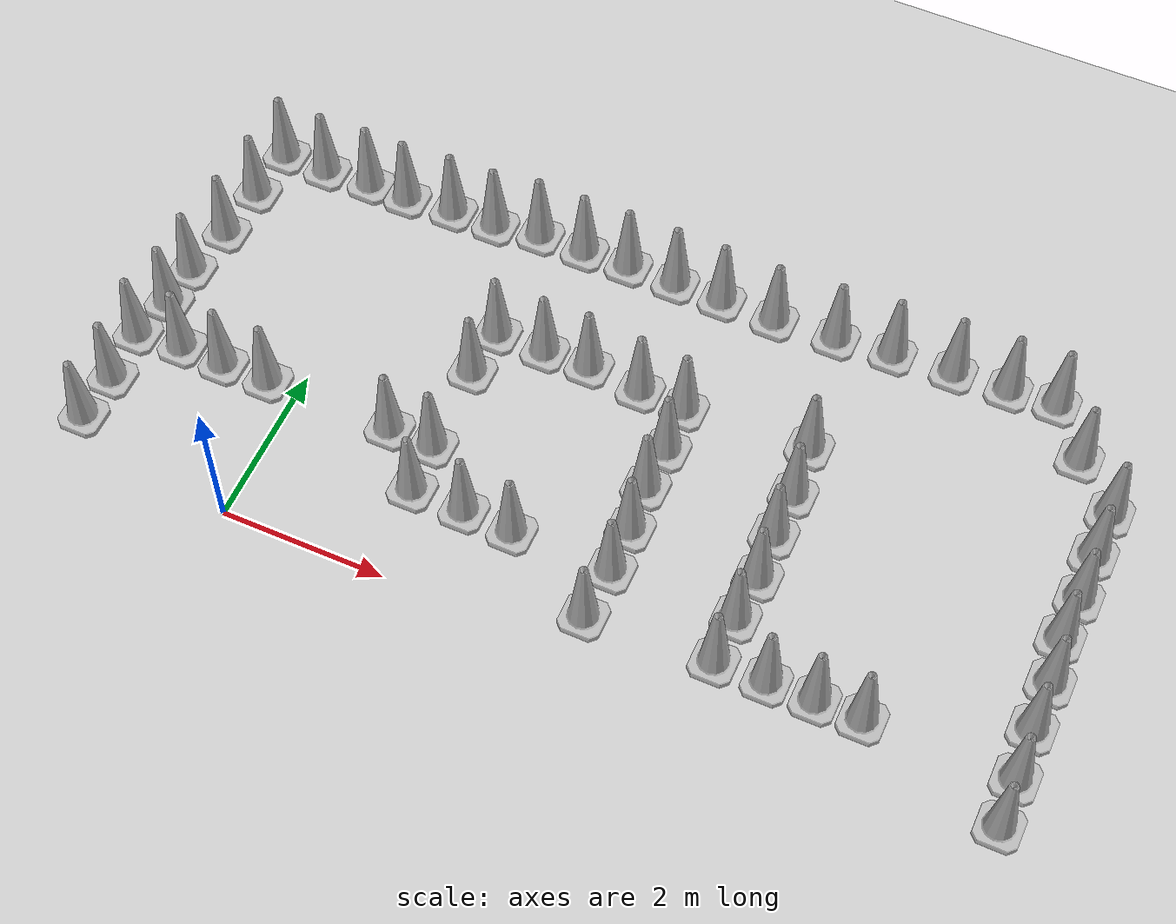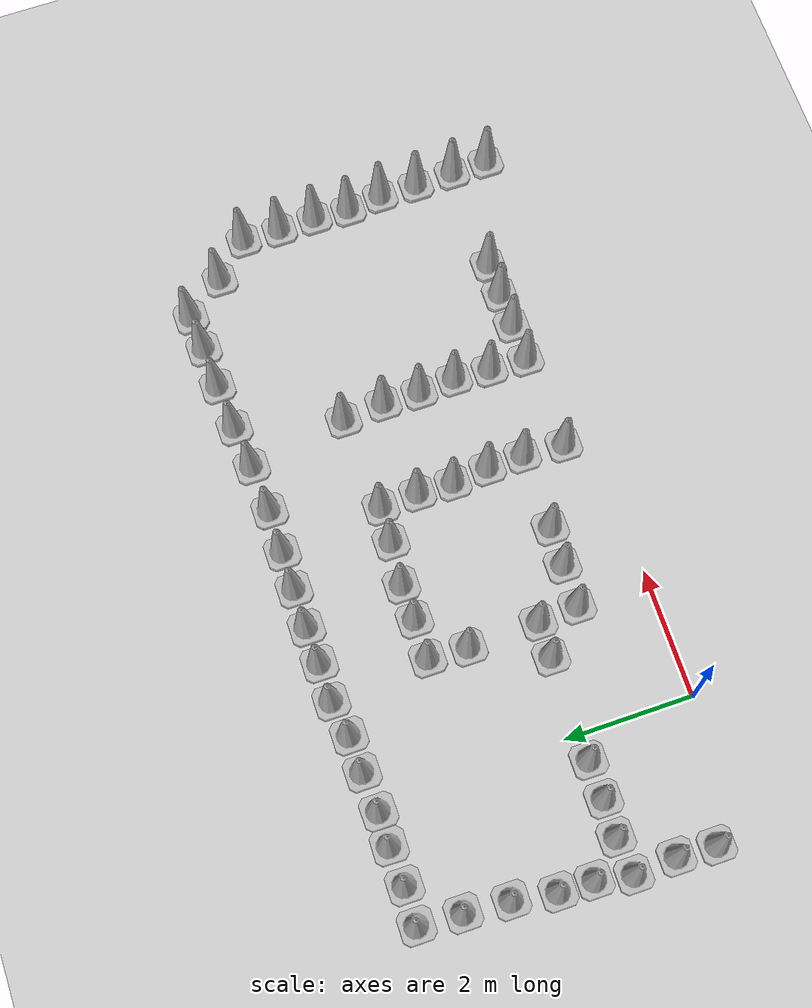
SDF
<sdf version="1.7">
 <world name="default">
  <model name="ground_plane">
   <static>1</static>
   <link name="link">
    <collision name="collision">
     <geometry><plane><normal>0 0 1</normal><size>100 100</size></plane></geometry>
     <surface>
      <contact><collide_bitmask>65535</collide_bitmask></contact>
      <friction><ode><mu>100</mu><mu2>50</mu2></ode></friction>
     </surface>
    </collision>
    <visual name="visual">
     <cast_shadows>0</cast_shadows>
     <geometry><plane><normal>0 0 1</normal><size>100 100</size></plane></geometry>
     <material>
      <script><uri>file://media/materials/scripts/gazebo.material</uri><name>Gazebo/Grey</name></script>
     </material>
    </visual>
   </link>
  </model>
  <model name="Construction Cone_8">
   <link name="link">
    <collision name="collision">
     <geometry>
      <mesh><scale>10 10 10</scale><uri>model://construction_cone/meshes/construction_cone.dae</uri></mesh>
     </geometry>
    </collision>
    <visual name="visual">
     <geometry>
      <mesh><scale>10 10 10</scale><uri>model://construction_cone/meshes/construction_cone.dae</uri></mesh>
     </geometry>
    </visual>
    <inertial>
     <inertia><ixx>1</ixx><ixy>0</ixy><ixz>0</ixz><iyy>1</iyy><iyz>0</iyz><izz>1</izz></inertia>
     <mass>1</mass>
    </inertial>
   </link>
   <pose>-2.10442 0.47385 -0 0 -0 0</pose>
  </model>
  <model name="Construction Cone_9">
   <link name="link">
    <collision name="collision">
     <geometry>
      <mesh><scale>10 10 10</scale><uri>model://construction_cone/meshes/construction_cone.dae</uri></mesh>
     </geometry>
    </collision>
    <visual name="visual">
     <geometry>
      <mesh><scale>10 10 10</scale><uri>model://construction_cone/meshes/construction_cone.dae</uri></mesh>
     </geometry>
    </visual>
    <inertial>
     <inertia><ixx>1</ixx><ixy>0</ixy><ixz>0</ixz><iyy>1</iyy><iyz>0</iyz><izz>1</izz></inertia>
     <mass>1</mass>
    </inertial>
   </link>
   <pose>-2.07021 1.07184 -0 0 -0 0</pose>
  </model>
  <model name="Construction Cone_12">
   <link name="link">
    <collision name="collision">
     <geometry>
      <mesh><scale>10 10 10</scale><uri>model://construction_cone/meshes/construction_cone.dae</uri></mesh>
     </geometry>
    </collision>
    <visual name="visual">
     <geometry>
      <mesh><scale>10 10 10</scale><uri>model://construction_cone/meshes/construction_cone.dae</uri></mesh>
     </geometry>
    </visual>
    <inertial>
     <inertia><ixx>1</ixx><ixy>0</ixy><ixz>0</ixz><iyy>1</iyy><iyz>0</iyz><izz>1</izz></inertia>
     <mass>1</mass>
    </inertial>
   </link>
   <pose>-2.11151 1.73001 0 -0 -0 -0</pose>
  </model>
  <model name="Construction Cone_13">
   <link name="link">
    <collision name="collision">
     <geometry>
      <mesh><scale>10 10 10</scale><uri>model://construction_cone/meshes/construction_cone.dae</uri></mesh>
     </geometry>
    </collision>
    <visual name="visual">
     <geometry>
      <mesh><scale>10 10 10</scale><uri>model://construction_cone/meshes/construction_cone.dae</uri></mesh>
     </geometry>
    </visual>
    <inertial>
     <inertia><ixx>1</ixx><ixy>0</ixy><ixz>0</ixz><iyy>1</iyy><iyz>0</iyz><izz>1</izz></inertia>
     <mass>1</mass>
    </inertial>
   </link>
   <pose>-1.53957 1.78306 -0 0 -0 0</pose>
  </model>
  <model name="Construction Cone_14">
   <link name="link">
    <collision name="collision">
     <geometry>
      <mesh><scale>10 10 10</scale><uri>model://construction_cone/meshes/construction_cone.dae</uri></mesh>
     </geometry>
    </collision>
    <visual name="visual">
     <geometry>
      <mesh><scale>10 10 10</scale><uri>model://construction_cone/meshes/construction_cone.dae</uri></mesh>
     </geometry>
    </visual>
    <inertial>
     <inertia><ixx>1</ixx><ixy>0</ixy><ixz>0</ixz><iyy>1</iyy><iyz>0</iyz><izz>1</izz></inertia>
     <mass>1</mass>
    </inertial>
   </link>
   <pose>-0.975728 1.76072 -0 0 -0 0</pose>
  </model>
  <model name="Construction Cone_15">
   <link name="link">
    <collision name="collision">
     <geometry>
      <mesh><scale>10 10 10</scale><uri>model://construction_cone/meshes/construction_cone.dae</uri></mesh>
     </geometry>
    </collision>
    <visual name="visual">
     <geometry>
      <mesh><scale>10 10 10</scale><uri>model://construction_cone/meshes/construction_cone.dae</uri></mesh>
     </geometry>
    </visual>
    <inertial>
     <inertia><ixx>1</ixx><ixy>0</ixy><ixz>0</ixz><iyy>1</iyy><iyz>0</iyz><izz>1</izz></inertia>
     <mass>1</mass>
    </inertial>
   </link>
   <pose>-0.387008 1.76867 -0 0 -0 0</pose>
  </model>
  <model name="Construction Cone_16">
   <link name="link">
    <collision name="collision">
     <geometry>
      <mesh><scale>10 10 10</scale><uri>model://construction_cone/meshes/construction_cone.dae</uri></mesh>
     </geometry>
    </collision>
    <visual name="visual">
     <geometry>
      <mesh><scale>10 10 10</scale><uri>model://construction_cone/meshes/construction_cone.dae</uri></mesh>
     </geometry>
    </visual>
    <inertial>
     <inertia><ixx>1</ixx><ixy>0</ixy><ixz>0</ixz><iyy>1</iyy><iyz>0</iyz><izz>1</izz></inertia>
     <mass>1</mass>
    </inertial>
   </link>
   <pose>1.81349 1.12938 -0 0 -0 0</pose>
  </model>
  <model name="Construction Cone_17">
   <link name="link">
    <collision name="collision">
     <geometry>
      <mesh><scale>10 10 10</scale><uri>model://construction_cone/meshes/construction_cone.dae</uri></mesh>
     </geometry>
    </collision>
    <visual name="visual">
     <geometry>
      <mesh><scale>10 10 10</scale><uri>model://construction_cone/meshes/construction_cone.dae</uri></mesh>
     </geometry>
    </visual>
    <inertial>
     <inertia><ixx>1</ixx><ixy>0</ixy><ixz>0</ixz><iyy>1</iyy><iyz>0</iyz><izz>1</izz></inertia>
     <mass>1</mass>
    </inertial>
   </link>
   <pose>1.76686 1.75482 -0 0 -0 0</pose>
  </model>
  <model name="Construction Cone_18">
   <link name="link">
    <collision name="collision">
     <geometry>
      <mesh><scale>10 10 10</scale><uri>model://construction_cone/meshes/construction_cone.dae</uri></mesh>
     </geometry>
    </collision>
    <visual name="visual">
     <geometry>
      <mesh><scale>10 10 10</scale><uri>model://construction_cone/meshes/construction_cone.dae</uri></mesh>
     </geometry>
    </visual>
    <inertial>
     <inertia><ixx>1</ixx><ixy>0</ixy><ixz>0</ixz><iyy>1</iyy><iyz>0</iyz><izz>1</izz></inertia>
     <mass>1</mass>
    </inertial>
   </link>
   <pose>1.20932 1.76099 -0 0 -0 0</pose>
  </model>
  <model name="Construction Cone_19">
   <link name="link">
    <collision name="collision">
     <geometry>
      <mesh><scale>10 10 10</scale><uri>model://construction_cone/meshes/construction_cone.dae</uri></mesh>
     </geometry>
    </collision>
    <visual name="visual">
     <geometry>
      <mesh><scale>10 10 10</scale><uri>model://construction_cone/meshes/construction_cone.dae</uri></mesh>
     </geometry>
    </visual>
    <inertial>
     <inertia><ixx>1</ixx><ixy>0</ixy><ixz>0</ixz><iyy>1</iyy><iyz>0</iyz><izz>1</izz></inertia>
     <mass>1</mass>
    </inertial>
   </link>
   <pose>2.47039 1.11818 -0 -0 -0 -0</pose>
  </model>
  <model name="Construction Cone_20">
   <link name="link">
    <collision name="collision">
     <geometry>
      <mesh><scale>10 10 10</scale><uri>model://construction_cone/meshes/construction_cone.dae</uri></mesh>
     </geometry>
    </collision>
    <visual name="visual">
     <geometry>
      <mesh><scale>10 10 10</scale><uri>model://construction_cone/meshes/construction_cone.dae</uri></mesh>
     </geometry>
    </visual>
    <inertial>
     <inertia><ixx>1</ixx><ixy>0</ixy><ixz>0</ixz><iyy>1</iyy><iyz>0</iyz><izz>1</izz></inertia>
     <mass>1</mass>
    </inertial>
   </link>
   <pose>3.08287 1.09 -0 0 -0 0</pose>
  </model>
  <model name="Construction Cone_21">
   <link name="link">
    <collision name="collision">
     <geometry>
      <mesh><scale>10 10 10</scale><uri>model://construction_cone/meshes/construction_cone.dae</uri></mesh>
     </geometry>
    </collision>
    <visual name="visual">
     <geometry>
      <mesh><scale>10 10 10</scale><uri>model://construction_cone/meshes/construction_cone.dae</uri></mesh>
     </geometry>
    </visual>
    <inertial>
     <inertia><ixx>1</ixx><ixy>0</ixy><ixz>0</ixz><iyy>1</iyy><iyz>0</iyz><izz>1</izz></inertia>
     <mass>1</mass>
    </inertial>
   </link>
   <pose>4.29676 1.09476 -0 0 -0 0</pose>
  </model>
  <model name="Construction Cone_22">
   <link name="link">
    <collision name="collision">
     <geometry>
      <mesh><scale>10 10 10</scale><uri>model://construction_cone/meshes/construction_cone.dae</uri></mesh>
     </geometry>
    </collision>
    <visual name="visual">
     <geometry>
      <mesh><scale>10 10 10</scale><uri>model://construction_cone/meshes/construction_cone.dae</uri></mesh>
     </geometry>
    </visual>
    <inertial>
     <inertia><ixx>1</ixx><ixy>0</ixy><ixz>0</ixz><iyy>1</iyy><iyz>0</iyz><izz>1</izz></inertia>
     <mass>1</mass>
    </inertial>
   </link>
   <pose>4.27915 1.66864 -0 0 -0 0</pose>
  </model>
  <model name="Construction Cone_23">
   <link name="link">
    <collision name="collision">
     <geometry>
      <mesh><scale>10 10 10</scale><uri>model://construction_cone/meshes/construction_cone.dae</uri></mesh>
     </geometry>
    </collision>
    <visual name="visual">
     <geometry>
      <mesh><scale>10 10 10</scale><uri>model://construction_cone/meshes/construction_cone.dae</uri></mesh>
     </geometry>
    </visual>
    <inertial>
     <inertia><ixx>1</ixx><ixy>0</ixy><ixz>0</ixz><iyy>1</iyy><iyz>0</iyz><izz>1</izz></inertia>
     <mass>1</mass>
    </inertial>
   </link>
   <pose>4.22013 2.24031 -0 0 -0 0</pose>
  </model>
  <model name="Construction Cone_24">
   <link name="link">
    <collision name="collision">
     <geometry>
      <mesh><scale>10 10 10</scale><uri>model://construction_cone/meshes/construction_cone.dae</uri></mesh>
     </geometry>
    </collision>
    <visual name="visual">
     <geometry>
      <mesh><scale>10 10 10</scale><uri>model://construction_cone/meshes/construction_cone.dae</uri></mesh>
     </geometry>
    </visual>
    <inertial>
     <inertia><ixx>1</ixx><ixy>0</ixy><ixz>0</ixz><iyy>1</iyy><iyz>0</iyz><izz>1</izz></inertia>
     <mass>1</mass>
    </inertial>
   </link>
   <pose>4.23444 2.79979 0 -0 -0 -0</pose>
  </model>
  <model name="Construction Cone_25">
   <link name="link">
    <collision name="collision">
     <geometry>
      <mesh><scale>10 10 10</scale><uri>model://construction_cone/meshes/construction_cone.dae</uri></mesh>
     </geometry>
    </collision>
    <visual name="visual">
     <geometry>
      <mesh><scale>10 10 10</scale><uri>model://construction_cone/meshes/construction_cone.dae</uri></mesh>
     </geometry>
    </visual>
    <inertial>
     <inertia><ixx>1</ixx><ixy>0</ixy><ixz>0</ixz><iyy>1</iyy><iyz>0</iyz><izz>1</izz></inertia>
     <mass>1</mass>
    </inertial>
   </link>
   <pose>4.2051 3.39511 -0 0 -0 0</pose>
  </model>
  <model name="Construction Cone_26">
   <link name="link">
    <collision name="collision">
     <geometry>
      <mesh><scale>10 10 10</scale><uri>model://construction_cone/meshes/construction_cone.dae</uri></mesh>
     </geometry>
    </collision>
    <visual name="visual">
     <geometry>
      <mesh><scale>10 10 10</scale><uri>model://construction_cone/meshes/construction_cone.dae</uri></mesh>
     </geometry>
    </visual>
    <inertial>
     <inertia><ixx>1</ixx><ixy>0</ixy><ixz>0</ixz><iyy>1</iyy><iyz>0</iyz><izz>1</izz></inertia>
     <mass>1</mass>
    </inertial>
   </link>
   <pose>3.63468 3.42342 -0 0 -0 0</pose>
  </model>
  <model name="Construction Cone_27">
   <link name="link">
    <collision name="collision">
     <geometry>
      <mesh><scale>10 10 10</scale><uri>model://construction_cone/meshes/construction_cone.dae</uri></mesh>
     </geometry>
    </collision>
    <visual name="visual">
     <geometry>
      <mesh><scale>10 10 10</scale><uri>model://construction_cone/meshes/construction_cone.dae</uri></mesh>
     </geometry>
    </visual>
    <inertial>
     <inertia><ixx>1</ixx><ixy>0</ixy><ixz>0</ixz><iyy>1</iyy><iyz>0</iyz><izz>1</izz></inertia>
     <mass>1</mass>
    </inertial>
   </link>
   <pose>2.95527 3.48574 -0 0 -0 0</pose>
  </model>
  <model name="Construction Cone_28">
   <link name="link">
    <collision name="collision">
     <geometry>
      <mesh><scale>10 10 10</scale><uri>model://construction_cone/meshes/construction_cone.dae</uri></mesh>
     </geometry>
    </collision>
    <visual name="visual">
     <geometry>
      <mesh><scale>10 10 10</scale><uri>model://construction_cone/meshes/construction_cone.dae</uri></mesh>
     </geometry>
    </visual>
    <inertial>
     <inertia><ixx>1</ixx><ixy>0</ixy><ixz>0</ixz><iyy>1</iyy><iyz>0</iyz><izz>1</izz></inertia>
     <mass>1</mass>
    </inertial>
   </link>
   <pose>2.39059 3.47145 -0 0 -0 0</pose>
  </model>
  <model name="Construction Cone_29">
   <link name="link">
    <collision name="collision">
     <geometry>
      <mesh><scale>10 10 10</scale><uri>model://construction_cone/meshes/construction_cone.dae</uri></mesh>
     </geometry>
    </collision>
    <visual name="visual">
     <geometry>
      <mesh><scale>10 10 10</scale><uri>model://construction_cone/meshes/construction_cone.dae</uri></mesh>
     </geometry>
    </visual>
    <inertial>
     <inertia><ixx>1</ixx><ixy>0</ixy><ixz>0</ixz><iyy>1</iyy><iyz>0</iyz><izz>1</izz></inertia>
     <mass>1</mass>
    </inertial>
   </link>
   <pose>1.77181 3.47564 -0 0 -0 0</pose>
  </model>
  <model name="Construction Cone_30">
   <link name="link">
    <collision name="collision">
     <geometry>
      <mesh><scale>10 10 10</scale><uri>model://construction_cone/meshes/construction_cone.dae</uri></mesh>
     </geometry>
    </collision>
    <visual name="visual">
     <geometry>
      <mesh><scale>10 10 10</scale><uri>model://construction_cone/meshes/construction_cone.dae</uri></mesh>
     </geometry>
    </visual>
    <inertial>
     <inertia><ixx>1</ixx><ixy>0</ixy><ixz>0</ixz><iyy>1</iyy><iyz>0</iyz><izz>1</izz></inertia>
     <mass>1</mass>
    </inertial>
   </link>
   <pose>1.73716 2.85691 -0 0 -0 0</pose>
  </model>
  <model name="Construction Cone_31">
   <link name="link">
    <collision name="collision">
     <geometry>
      <mesh><scale>10 10 10</scale><uri>model://construction_cone/meshes/construction_cone.dae</uri></mesh>
     </geometry>
    </collision>
    <visual name="visual">
     <geometry>
      <mesh><scale>10 10 10</scale><uri>model://construction_cone/meshes/construction_cone.dae</uri></mesh>
     </geometry>
    </visual>
    <inertial>
     <inertia><ixx>1</ixx><ixy>0</ixy><ixz>0</ixz><iyy>1</iyy><iyz>0</iyz><izz>1</izz></inertia>
     <mass>1</mass>
    </inertial>
   </link>
   <pose>4.25954 0.441284 -0 0 -0 0</pose>
  </model>
  <model name="Construction Cone_48">
   <link name="link">
    <collision name="collision">
     <geometry>
      <mesh><scale>10 10 10</scale><uri>model://construction_cone/meshes/construction_cone.dae</uri></mesh>
     </geometry>
    </collision>
    <visual name="visual">
     <geometry>
      <mesh><scale>10 10 10</scale><uri>model://construction_cone/meshes/construction_cone.dae</uri></mesh>
     </geometry>
    </visual>
    <inertial>
     <inertia><ixx>1</ixx><ixy>0</ixy><ixz>0</ixz><iyy>1</iyy><iyz>0</iyz><izz>1</izz></inertia>
     <mass>1</mass>
    </inertial>
   </link>
   <pose>5.77529 0.514484 -0 0 -1e-06 0</pose>
  </model>
  <model name="Construction Cone_52">
   <link name="link">
    <collision name="collision">
     <geometry>
      <mesh><scale>10 10 10</scale><uri>model://construction_cone/meshes/construction_cone.dae</uri></mesh>
     </geometry>
    </collision>
    <visual name="visual">
     <geometry>
      <mesh><scale>10 10 10</scale><uri>model://construction_cone/meshes/construction_cone.dae</uri></mesh>
     </geometry>
    </visual>
    <inertial>
     <inertia><ixx>1</ixx><ixy>0</ixy><ixz>0</ixz><iyy>1</iyy><iyz>0</iyz><izz>1</izz></inertia>
     <mass>1</mass>
    </inertial>
   </link>
   <pose>5.78905 1.10142 -0 0 -1e-06 0</pose>
  </model>
  <model name="Construction Cone_53">
   <link name="link">
    <collision name="collision">
     <geometry>
      <mesh><scale>10 10 10</scale><uri>model://construction_cone/meshes/construction_cone.dae</uri></mesh>
     </geometry>
    </collision>
    <visual name="visual">
     <geometry>
      <mesh><scale>10 10 10</scale><uri>model://construction_cone/meshes/construction_cone.dae</uri></mesh>
     </geometry>
    </visual>
    <inertial>
     <inertia><ixx>1</ixx><ixy>0</ixy><ixz>0</ixz><iyy>1</iyy><iyz>0</iyz><izz>1</izz></inertia>
     <mass>1</mass>
    </inertial>
   </link>
   <pose>6.38293 0.527132 -0 0 -0 0</pose>
  </model>
  <model name="Construction Cone_58">
   <link name="link">
    <collision name="collision">
     <geometry>
      <mesh><scale>10 10 10</scale><uri>model://construction_cone/meshes/construction_cone.dae</uri></mesh>
     </geometry>
    </collision>
    <visual name="visual">
     <geometry>
      <mesh><scale>10 10 10</scale><uri>model://construction_cone/meshes/construction_cone.dae</uri></mesh>
     </geometry>
    </visual>
    <inertial>
     <inertia><ixx>1</ixx><ixy>0</ixy><ixz>0</ixz><iyy>1</iyy><iyz>0</iyz><izz>1</izz></inertia>
     <mass>1</mass>
    </inertial>
   </link>
   <pose>6.9423 0.529005 -0 0 -1e-06 0</pose>
  </model>
  <model name="Construction Cone_59">
   <link name="link">
    <collision name="collision">
     <geometry>
      <mesh><scale>10 10 10</scale><uri>model://construction_cone/meshes/construction_cone.dae</uri></mesh>
     </geometry>
    </collision>
    <visual name="visual">
     <geometry>
      <mesh><scale>10 10 10</scale><uri>model://construction_cone/meshes/construction_cone.dae</uri></mesh>
     </geometry>
    </visual>
    <inertial>
     <inertia><ixx>1</ixx><ixy>0</ixy><ixz>0</ixz><iyy>1</iyy><iyz>0</iyz><izz>1</izz></inertia>
     <mass>1</mass>
    </inertial>
   </link>
   <pose>7.48709 0.52778 -0 0 -1e-06 0</pose>
  </model>
  <model name="Construction Cone_60">
   <link name="link">
    <collision name="collision">
     <geometry>
      <mesh><scale>10 10 10</scale><uri>model://construction_cone/meshes/construction_cone.dae</uri></mesh>
     </geometry>
    </collision>
    <visual name="visual">
     <geometry>
      <mesh><scale>10 10 10</scale><uri>model://construction_cone/meshes/construction_cone.dae</uri></mesh>
     </geometry>
    </visual>
    <inertial>
     <inertia><ixx>1</ixx><ixy>0</ixy><ixz>0</ixz><iyy>1</iyy><iyz>0</iyz><izz>1</izz></inertia>
     <mass>1</mass>
    </inertial>
   </link>
   <pose>5.81809 1.67331 -0 0 -1e-06 0</pose>
  </model>
  <model name="Construction Cone_61">
   <link name="link">
    <collision name="collision">
     <geometry>
      <mesh><scale>10 10 10</scale><uri>model://construction_cone/meshes/construction_cone.dae</uri></mesh>
     </geometry>
    </collision>
    <visual name="visual">
     <geometry>
      <mesh><scale>10 10 10</scale><uri>model://construction_cone/meshes/construction_cone.dae</uri></mesh>
     </geometry>
    </visual>
    <inertial>
     <inertia><ixx>1</ixx><ixy>0</ixy><ixz>0</ixz><iyy>1</iyy><iyz>0</iyz><izz>1</izz></inertia>
     <mass>1</mass>
    </inertial>
   </link>
   <pose>5.78102 2.25076 -0 0 -0 0</pose>
  </model>
  <model name="Construction Cone_62">
   <link name="link">
    <collision name="collision">
     <geometry>
      <mesh><scale>10 10 10</scale><uri>model://construction_cone/meshes/construction_cone.dae</uri></mesh>
     </geometry>
    </collision>
    <visual name="visual">
     <geometry>
      <mesh><scale>10 10 10</scale><uri>model://construction_cone/meshes/construction_cone.dae</uri></mesh>
     </geometry>
    </visual>
    <inertial>
     <inertia><ixx>1</ixx><ixy>0</ixy><ixz>0</ixz><iyy>1</iyy><iyz>0</iyz><izz>1</izz></inertia>
     <mass>1</mass>
    </inertial>
   </link>
   <pose>5.78332 2.83354 -0 0 -0 0</pose>
  </model>
  <model name="Construction Cone_63">
   <link name="link">
    <collision name="collision">
     <geometry>
      <mesh><scale>10 10 10</scale><uri>model://construction_cone/meshes/construction_cone.dae</uri></mesh>
     </geometry>
    </collision>
    <visual name="visual">
     <geometry>
      <mesh><scale>10 10 10</scale><uri>model://construction_cone/meshes/construction_cone.dae</uri></mesh>
     </geometry>
    </visual>
    <inertial>
     <inertia><ixx>1</ixx><ixy>0</ixy><ixz>0</ixz><iyy>1</iyy><iyz>0</iyz><izz>1</izz></inertia>
     <mass>1</mass>
    </inertial>
   </link>
   <pose>5.72161 3.4937 -0 0 -1e-06 0</pose>
  </model>
  <model name="Construction Cone_76">
   <link name="link">
    <collision name="collision">
     <geometry>
      <mesh><scale>10 10 10</scale><uri>model://construction_cone/meshes/construction_cone.dae</uri></mesh>
     </geometry>
    </collision>
    <visual name="visual">
     <geometry>
      <mesh><scale>10 10 10</scale><uri>model://construction_cone/meshes/construction_cone.dae</uri></mesh>
     </geometry>
    </visual>
    <inertial>
     <inertia><ixx>1</ixx><ixy>0</ixy><ixz>0</ixz><iyy>1</iyy><iyz>0</iyz><izz>1</izz></inertia>
     <mass>1</mass>
    </inertial>
   </link>
   <pose>9.22043 -0.040389 -0 0 -0 0</pose>
  </model>
  <model name="Construction Cone_77">
   <link name="link">
    <collision name="collision">
     <geometry>
      <mesh><scale>10 10 10</scale><uri>model://construction_cone/meshes/construction_cone.dae</uri></mesh>
     </geometry>
    </collision>
    <visual name="visual">
     <geometry>
      <mesh><scale>10 10 10</scale><uri>model://construction_cone/meshes/construction_cone.dae</uri></mesh>
     </geometry>
    </visual>
    <inertial>
     <inertia><ixx>1</ixx><ixy>0</ixy><ixz>0</ixz><iyy>1</iyy><iyz>0</iyz><izz>1</izz></inertia>
     <mass>1</mass>
    </inertial>
   </link>
   <pose>9.20167 0.540591 -0 0 -0 0</pose>
  </model>
  <model name="Construction Cone_78">
   <link name="link">
    <collision name="collision">
     <geometry>
      <mesh><scale>10 10 10</scale><uri>model://construction_cone/meshes/construction_cone.dae</uri></mesh>
     </geometry>
    </collision>
    <visual name="visual">
     <geometry>
      <mesh><scale>10 10 10</scale><uri>model://construction_cone/meshes/construction_cone.dae</uri></mesh>
     </geometry>
    </visual>
    <inertial>
     <inertia><ixx>1</ixx><ixy>0</ixy><ixz>0</ixz><iyy>1</iyy><iyz>0</iyz><izz>1</izz></inertia>
     <mass>1</mass>
    </inertial>
   </link>
   <pose>9.17944 1.16024 -0 0 -1e-06 0</pose>
  </model>
  <model name="Construction Cone_79">
   <link name="link">
    <collision name="collision">
     <geometry>
      <mesh><scale>10 10 10</scale><uri>model://construction_cone/meshes/construction_cone.dae</uri></mesh>
     </geometry>
    </collision>
    <visual name="visual">
     <geometry>
      <mesh><scale>10 10 10</scale><uri>model://construction_cone/meshes/construction_cone.dae</uri></mesh>
     </geometry>
    </visual>
    <inertial>
     <inertia><ixx>1</ixx><ixy>0</ixy><ixz>0</ixz><iyy>1</iyy><iyz>0</iyz><izz>1</izz></inertia>
     <mass>1</mass>
    </inertial>
   </link>
   <pose>9.18199 1.76212 -0 0 -1e-06 0</pose>
  </model>
  <model name="Construction Cone_80">
   <link name="link">
    <collision name="collision">
     <geometry>
      <mesh><scale>10 10 10</scale><uri>model://construction_cone/meshes/construction_cone.dae</uri></mesh>
     </geometry>
    </collision>
    <visual name="visual">
     <geometry>
      <mesh><scale>10 10 10</scale><uri>model://construction_cone/meshes/construction_cone.dae</uri></mesh>
     </geometry>
    </visual>
    <inertial>
     <inertia><ixx>1</ixx><ixy>0</ixy><ixz>0</ixz><iyy>1</iyy><iyz>0</iyz><izz>1</izz></inertia>
     <mass>1</mass>
    </inertial>
   </link>
   <pose>9.1166 2.31998 -0 0 -0 0</pose>
  </model>
  <model name="Construction Cone_81">
   <link name="link">
    <collision name="collision">
     <geometry>
      <mesh><scale>10 10 10</scale><uri>model://construction_cone/meshes/construction_cone.dae</uri></mesh>
     </geometry>
    </collision>
    <visual name="visual">
     <geometry>
      <mesh><scale>10 10 10</scale><uri>model://construction_cone/meshes/construction_cone.dae</uri></mesh>
     </geometry>
    </visual>
    <inertial>
     <inertia><ixx>1</ixx><ixy>0</ixy><ixz>0</ixz><iyy>1</iyy><iyz>0</iyz><izz>1</izz></inertia>
     <mass>1</mass>
    </inertial>
   </link>
   <pose>9.14789 2.87869 -0 0 -1e-06 0</pose>
  </model>
  <model name="Construction Cone_82">
   <link name="link">
    <collision name="collision">
     <geometry>
      <mesh><scale>10 10 10</scale><uri>model://construction_cone/meshes/construction_cone.dae</uri></mesh>
     </geometry>
    </collision>
    <visual name="visual">
     <geometry>
      <mesh><scale>10 10 10</scale><uri>model://construction_cone/meshes/construction_cone.dae</uri></mesh>
     </geometry>
    </visual>
    <inertial>
     <inertia><ixx>1</ixx><ixy>0</ixy><ixz>0</ixz><iyy>1</iyy><iyz>0</iyz><izz>1</izz></inertia>
     <mass>1</mass>
    </inertial>
   </link>
   <pose>9.12885 3.46501 -0 0 -1e-06 0</pose>
  </model>
  <model name="Construction Cone_83">
   <link name="link">
    <collision name="collision">
     <geometry>
      <mesh><scale>10 10 10</scale><uri>model://construction_cone/meshes/construction_cone.dae</uri></mesh>
     </geometry>
    </collision>
    <visual name="visual">
     <geometry>
      <mesh><scale>10 10 10</scale><uri>model://construction_cone/meshes/construction_cone.dae</uri></mesh>
     </geometry>
    </visual>
    <inertial>
     <inertia><ixx>1</ixx><ixy>0</ixy><ixz>0</ixz><iyy>1</iyy><iyz>0</iyz><izz>1</izz></inertia>
     <mass>1</mass>
    </inertial>
   </link>
   <pose>9.13226 4.05989 -0 0 -0 0</pose>
  </model>
  <model name="Construction Cone_84">
   <link name="link">
    <collision name="collision">
     <geometry>
      <mesh><scale>10 10 10</scale><uri>model://construction_cone/meshes/construction_cone.dae</uri></mesh>
     </geometry>
    </collision>
    <visual name="visual">
     <geometry>
      <mesh><scale>10 10 10</scale><uri>model://construction_cone/meshes/construction_cone.dae</uri></mesh>
     </geometry>
    </visual>
    <inertial>
     <inertia><ixx>1</ixx><ixy>0</ixy><ixz>0</ixz><iyy>1</iyy><iyz>0</iyz><izz>1</izz></inertia>
     <mass>1</mass>
    </inertial>
   </link>
   <pose>8.5995 4.61075 -0 0 -1e-06 0</pose>
  </model>
  <model name="Construction Cone_85">
   <link name="link">
    <collision name="collision">
     <geometry>
      <mesh><scale>10 10 10</scale><uri>model://construction_cone/meshes/construction_cone.dae</uri></mesh>
     </geometry>
    </collision>
    <visual name="visual">
     <geometry>
      <mesh><scale>10 10 10</scale><uri>model://construction_cone/meshes/construction_cone.dae</uri></mesh>
     </geometry>
    </visual>
    <inertial>
     <inertia><ixx>1</ixx><ixy>0</ixy><ixz>0</ixz><iyy>1</iyy><iyz>0</iyz><izz>1</izz></inertia>
     <mass>1</mass>
    </inertial>
   </link>
   <pose>8.13119 5.22336 -0 0 -1e-06 0</pose>
  </model>
  <model name="Construction Cone_86">
   <link name="link">
    <collision name="collision">
     <geometry>
      <mesh><scale>10 10 10</scale><uri>model://construction_cone/meshes/construction_cone.dae</uri></mesh>
     </geometry>
    </collision>
    <visual name="visual">
     <geometry>
      <mesh><scale>10 10 10</scale><uri>model://construction_cone/meshes/construction_cone.dae</uri></mesh>
     </geometry>
    </visual>
    <inertial>
     <inertia><ixx>1</ixx><ixy>0</ixy><ixz>0</ixz><iyy>1</iyy><iyz>0</iyz><izz>1</izz></inertia>
     <mass>1</mass>
    </inertial>
   </link>
   <pose>7.54897 5.18429 -0 0 -1e-06 0</pose>
  </model>
  <model name="Construction Cone_87">
   <link name="link">
    <collision name="collision">
     <geometry>
      <mesh><scale>10 10 10</scale><uri>model://construction_cone/meshes/construction_cone.dae</uri></mesh>
     </geometry>
    </collision>
    <visual name="visual">
     <geometry>
      <mesh><scale>10 10 10</scale><uri>model://construction_cone/meshes/construction_cone.dae</uri></mesh>
     </geometry>
    </visual>
    <inertial>
     <inertia><ixx>1</ixx><ixy>0</ixy><ixz>0</ixz><iyy>1</iyy><iyz>0</iyz><izz>1</izz></inertia>
     <mass>1</mass>
    </inertial>
   </link>
   <pose>6.88082 5.16091 -0 0 -1e-06 0</pose>
  </model>
  <model name="Construction Cone_88">
   <link name="link">
    <collision name="collision">
     <geometry>
      <mesh><scale>10 10 10</scale><uri>model://construction_cone/meshes/construction_cone.dae</uri></mesh>
     </geometry>
    </collision>
    <visual name="visual">
     <geometry>
      <mesh><scale>10 10 10</scale><uri>model://construction_cone/meshes/construction_cone.dae</uri></mesh>
     </geometry>
    </visual>
    <inertial>
     <inertia><ixx>1</ixx><ixy>0</ixy><ixz>0</ixz><iyy>1</iyy><iyz>0</iyz><izz>1</izz></inertia>
     <mass>1</mass>
    </inertial>
   </link>
   <pose>6.1422 5.11251 -0 0 -0 0</pose>
  </model>
  <model name="Construction Cone_89">
   <link name="link">
    <collision name="collision">
     <geometry>
      <mesh><scale>10 10 10</scale><uri>model://construction_cone/meshes/construction_cone.dae</uri></mesh>
     </geometry>
    </collision>
    <visual name="visual">
     <geometry>
      <mesh><scale>10 10 10</scale><uri>model://construction_cone/meshes/construction_cone.dae</uri></mesh>
     </geometry>
    </visual>
    <inertial>
     <inertia><ixx>1</ixx><ixy>0</ixy><ixz>0</ixz><iyy>1</iyy><iyz>0</iyz><izz>1</izz></inertia>
     <mass>1</mass>
    </inertial>
   </link>
   <pose>5.45427 5.04519 -0 0 -0 0</pose>
  </model>
  <model name="Construction Cone_90">
   <link name="link">
    <collision name="collision">
     <geometry>
      <mesh><scale>10 10 10</scale><uri>model://construction_cone/meshes/construction_cone.dae</uri></mesh>
     </geometry>
    </collision>
    <visual name="visual">
     <geometry>
      <mesh><scale>10 10 10</scale><uri>model://construction_cone/meshes/construction_cone.dae</uri></mesh>
     </geometry>
    </visual>
    <inertial>
     <inertia><ixx>1</ixx><ixy>0</ixy><ixz>0</ixz><iyy>1</iyy><iyz>0</iyz><izz>1</izz></inertia>
     <mass>1</mass>
    </inertial>
   </link>
   <pose>4.69125 4.9968 -0 0 -0 0</pose>
  </model>
  <model name="Construction Cone_91">
   <link name="link">
    <collision name="collision">
     <geometry>
      <mesh><scale>10 10 10</scale><uri>model://construction_cone/meshes/construction_cone.dae</uri></mesh>
     </geometry>
    </collision>
    <visual name="visual">
     <geometry>
      <mesh><scale>10 10 10</scale><uri>model://construction_cone/meshes/construction_cone.dae</uri></mesh>
     </geometry>
    </visual>
    <inertial>
     <inertia><ixx>1</ixx><ixy>0</ixy><ixz>0</ixz><iyy>1</iyy><iyz>0</iyz><izz>1</izz></inertia>
     <mass>1</mass>
    </inertial>
   </link>
   <pose>4.00879 5.00802 -0 0 -1e-06 0</pose>
  </model>
  <model name="Construction Cone_92">
   <link name="link">
    <collision name="collision">
     <geometry>
      <mesh><scale>10 10 10</scale><uri>model://construction_cone/meshes/construction_cone.dae</uri></mesh>
     </geometry>
    </collision>
    <visual name="visual">
     <geometry>
      <mesh><scale>10 10 10</scale><uri>model://construction_cone/meshes/construction_cone.dae</uri></mesh>
     </geometry>
    </visual>
    <inertial>
     <inertia><ixx>1</ixx><ixy>0</ixy><ixz>0</ixz><iyy>1</iyy><iyz>0</iyz><izz>1</izz></inertia>
     <mass>1</mass>
    </inertial>
   </link>
   <pose>3.40407 5.01407 -0 0 -1e-06 0</pose>
  </model>
  <model name="Construction Cone_93">
   <link name="link">
    <collision name="collision">
     <geometry>
      <mesh><scale>10 10 10</scale><uri>model://construction_cone/meshes/construction_cone.dae</uri></mesh>
     </geometry>
    </collision>
    <visual name="visual">
     <geometry>
      <mesh><scale>10 10 10</scale><uri>model://construction_cone/meshes/construction_cone.dae</uri></mesh>
     </geometry>
    </visual>
    <inertial>
     <inertia><ixx>1</ixx><ixy>0</ixy><ixz>0</ixz><iyy>1</iyy><iyz>0</iyz><izz>1</izz></inertia>
     <mass>1</mass>
    </inertial>
   </link>
   <pose>2.78869 5.01621 -0 0 -1e-06 0</pose>
  </model>
  <model name="Construction Cone_94">
   <link name="link">
    <collision name="collision">
     <geometry>
      <mesh><scale>10 10 10</scale><uri>model://construction_cone/meshes/construction_cone.dae</uri></mesh>
     </geometry>
    </collision>
    <visual name="visual">
     <geometry>
      <mesh><scale>10 10 10</scale><uri>model://construction_cone/meshes/construction_cone.dae</uri></mesh>
     </geometry>
    </visual>
    <inertial>
     <inertia><ixx>1</ixx><ixy>0</ixy><ixz>0</ixz><iyy>1</iyy><iyz>0</iyz><izz>1</izz></inertia>
     <mass>1</mass>
    </inertial>
   </link>
   <pose>2.21286 5.00132 -0 0 -1e-06 0</pose>
  </model>
  <model name="Construction Cone_95">
   <link name="link">
    <collision name="collision">
     <geometry>
      <mesh><scale>10 10 10</scale><uri>model://construction_cone/meshes/construction_cone.dae</uri></mesh>
     </geometry>
    </collision>
    <visual name="visual">
     <geometry>
      <mesh><scale>10 10 10</scale><uri>model://construction_cone/meshes/construction_cone.dae</uri></mesh>
     </geometry>
    </visual>
    <inertial>
     <inertia><ixx>1</ixx><ixy>0</ixy><ixz>0</ixz><iyy>1</iyy><iyz>0</iyz><izz>1</izz></inertia>
     <mass>1</mass>
    </inertial>
   </link>
   <pose>1.6227 5.0041 -0 0 -0 0</pose>
  </model>
  <model name="Construction Cone_96">
   <link name="link">
    <collision name="collision">
     <geometry>
      <mesh><scale>10 10 10</scale><uri>model://construction_cone/meshes/construction_cone.dae</uri></mesh>
     </geometry>
    </collision>
    <visual name="visual">
     <geometry>
      <mesh><scale>10 10 10</scale><uri>model://construction_cone/meshes/construction_cone.dae</uri></mesh>
     </geometry>
    </visual>
    <inertial>
     <inertia><ixx>1</ixx><ixy>0</ixy><ixz>0</ixz><iyy>1</iyy><iyz>0</iyz><izz>1</izz></inertia>
     <mass>1</mass>
    </inertial>
   </link>
   <pose>1.0596 4.91607 -0 0 -1e-06 0</pose>
  </model>
  <model name="Construction Cone_97">
   <link name="link">
    <collision name="collision">
     <geometry>
      <mesh><scale>10 10 10</scale><uri>model://construction_cone/meshes/construction_cone.dae</uri></mesh>
     </geometry>
    </collision>
    <visual name="visual">
     <geometry>
      <mesh><scale>10 10 10</scale><uri>model://construction_cone/meshes/construction_cone.dae</uri></mesh>
     </geometry>
    </visual>
    <inertial>
     <inertia><ixx>1</ixx><ixy>0</ixy><ixz>0</ixz><iyy>1</iyy><iyz>0</iyz><izz>1</izz></inertia>
     <mass>1</mass>
    </inertial>
   </link>
   <pose>0.495536 4.90084 -0 0 -1e-06 0</pose>
  </model>
  <model name="Construction Cone_98">
   <link name="link">
    <collision name="collision">
     <geometry>
      <mesh><scale>10 10 10</scale><uri>model://construction_cone/meshes/construction_cone.dae</uri></mesh>
     </geometry>
    </collision>
    <visual name="visual">
     <geometry>
      <mesh><scale>10 10 10</scale><uri>model://construction_cone/meshes/construction_cone.dae</uri></mesh>
     </geometry>
    </visual>
    <inertial>
     <inertia><ixx>1</ixx><ixy>0</ixy><ixz>0</ixz><iyy>1</iyy><iyz>0</iyz><izz>1</izz></inertia>
     <mass>1</mass>
    </inertial>
   </link>
   <pose>-0.109633 4.85379 -0 0 -1e-06 0.014813</pose>
  </model>
  <model name="Construction Cone_99">
   <link name="link">
    <collision name="collision">
     <geometry>
      <mesh><scale>10 10 10</scale><uri>model://construction_cone/meshes/construction_cone.dae</uri></mesh>
     </geometry>
    </collision>
    <visual name="visual">
     <geometry>
      <mesh><scale>10 10 10</scale><uri>model://construction_cone/meshes/construction_cone.dae</uri></mesh>
     </geometry>
    </visual>
    <inertial>
     <inertia><ixx>1</ixx><ixy>0</ixy><ixz>0</ixz><iyy>1</iyy><iyz>0</iyz><izz>1</izz></inertia>
     <mass>1</mass>
    </inertial>
   </link>
   <pose>-0.619139 4.86338 -0 0 0 -0.023995</pose>
  </model>
  <model name="Construction Cone_100">
   <link name="link">
    <collision name="collision">
     <geometry>
      <mesh><scale>10 10 10</scale><uri>model://construction_cone/meshes/construction_cone.dae</uri></mesh>
     </geometry>
    </collision>
    <visual name="visual">
     <geometry>
      <mesh><scale>10 10 10</scale><uri>model://construction_cone/meshes/construction_cone.dae</uri></mesh>
     </geometry>
    </visual>
    <inertial>
     <inertia><ixx>1</ixx><ixy>0</ixy><ixz>0</ixz><iyy>1</iyy><iyz>0</iyz><izz>1</izz></inertia>
     <mass>1</mass>
    </inertial>
   </link>
   <pose>-1.20992 4.82984 -0 0 -0 0</pose>
  </model>
  <model name="Construction Cone_101">
   <link name="link">
    <collision name="collision">
     <geometry>
      <mesh><scale>10 10 10</scale><uri>model://construction_cone/meshes/construction_cone.dae</uri></mesh>
     </geometry>
    </collision>
    <visual name="visual">
     <geometry>
      <mesh><scale>10 10 10</scale><uri>model://construction_cone/meshes/construction_cone.dae</uri></mesh>
     </geometry>
    </visual>
    <inertial>
     <inertia><ixx>1</ixx><ixy>0</ixy><ixz>0</ixz><iyy>1</iyy><iyz>0</iyz><izz>1</izz></inertia>
     <mass>1</mass>
    </inertial>
   </link>
   <pose>-1.78789 4.84843 -0 0 -1e-06 0</pose>
  </model>
  <model name="Construction Cone_102">
   <link name="link">
    <collision name="collision">
     <geometry>
      <mesh><scale>10 10 10</scale><uri>model://construction_cone/meshes/construction_cone.dae</uri></mesh>
     </geometry>
    </collision>
    <visual name="visual">
     <geometry>
      <mesh><scale>10 10 10</scale><uri>model://construction_cone/meshes/construction_cone.dae</uri></mesh>
     </geometry>
    </visual>
    <inertial>
     <inertia><ixx>1</ixx><ixy>0</ixy><ixz>0</ixz><iyy>1</iyy><iyz>0</iyz><izz>1</izz></inertia>
     <mass>1</mass>
    </inertial>
   </link>
   <pose>-1.8323 4.17582 -0 0 -1e-06 0</pose>
  </model>
  <model name="Construction Cone_103">
   <link name="link">
    <collision name="collision">
     <geometry>
      <mesh><scale>10 10 10</scale><uri>model://construction_cone/meshes/construction_cone.dae</uri></mesh>
     </geometry>
    </collision>
    <visual name="visual">
     <geometry>
      <mesh><scale>10 10 10</scale><uri>model://construction_cone/meshes/construction_cone.dae</uri></mesh>
     </geometry>
    </visual>
    <inertial>
     <inertia><ixx>1</ixx><ixy>0</ixy><ixz>0</ixz><iyy>1</iyy><iyz>0</iyz><izz>1</izz></inertia>
     <mass>1</mass>
    </inertial>
   </link>
   <pose>-1.88338 3.48141 -0 0 -1e-06 0</pose>
  </model>
  <model name="Construction Cone_104">
   <link name="link">
    <collision name="collision">
     <geometry>
      <mesh><scale>10 10 10</scale><uri>model://construction_cone/meshes/construction_cone.dae</uri></mesh>
     </geometry>
    </collision>
    <visual name="visual">
     <geometry>
      <mesh><scale>10 10 10</scale><uri>model://construction_cone/meshes/construction_cone.dae</uri></mesh>
     </geometry>
    </visual>
    <inertial>
     <inertia><ixx>1</ixx><ixy>0</ixy><ixz>0</ixz><iyy>1</iyy><iyz>0</iyz><izz>1</izz></inertia>
     <mass>1</mass>
    </inertial>
   </link>
   <pose>-1.9898 2.81975 -0 0 -1e-06 0</pose>
  </model>
  <model name="Construction Cone_105">
   <link name="link">
    <collision name="collision">
     <geometry>
      <mesh><scale>10 10 10</scale><uri>model://construction_cone/meshes/construction_cone.dae</uri></mesh>
     </geometry>
    </collision>
    <visual name="visual">
     <geometry>
      <mesh><scale>10 10 10</scale><uri>model://construction_cone/meshes/construction_cone.dae</uri></mesh>
     </geometry>
    </visual>
    <inertial>
     <inertia><ixx>1</ixx><ixy>0</ixy><ixz>0</ixz><iyy>1</iyy><iyz>0</iyz><izz>1</izz></inertia>
     <mass>1</mass>
    </inertial>
   </link>
   <pose>-2.00278 2.28189 -0 0 -0 0</pose>
  </model>
 </world>
</sdf>
